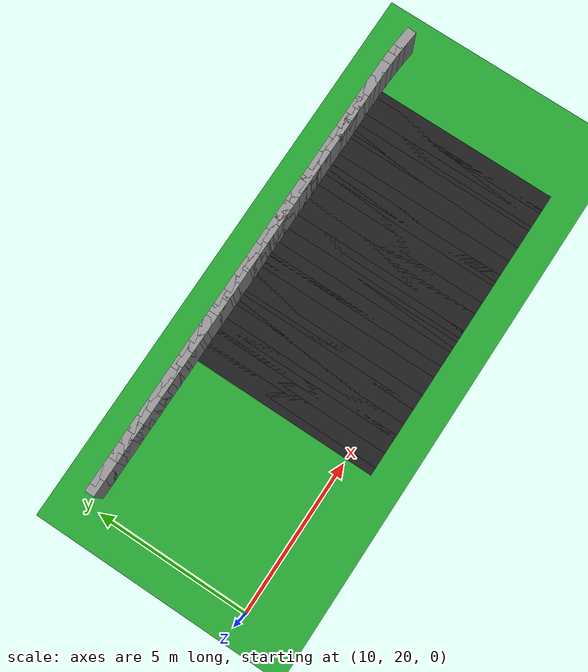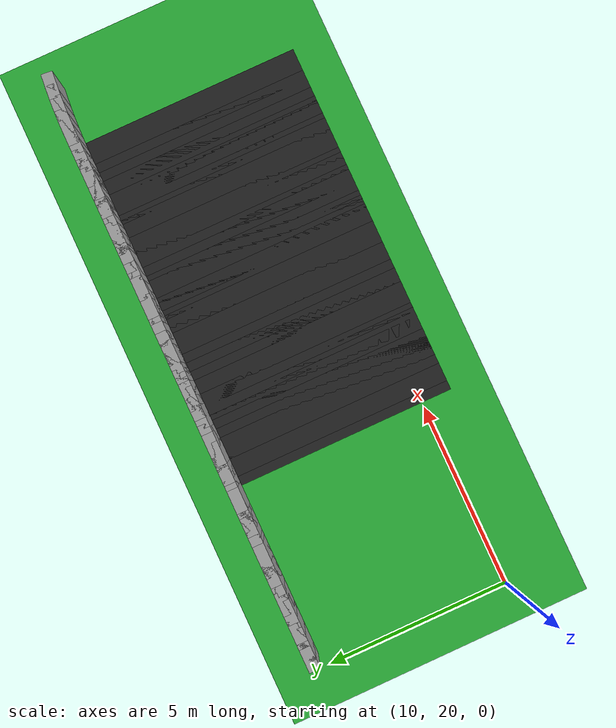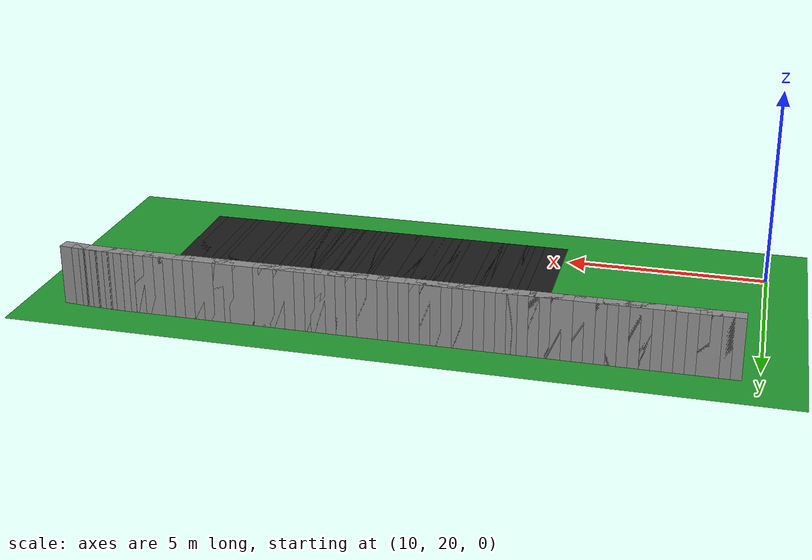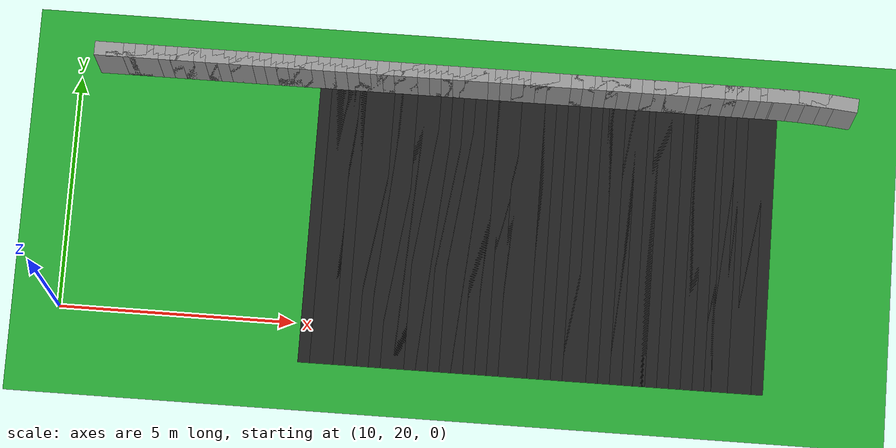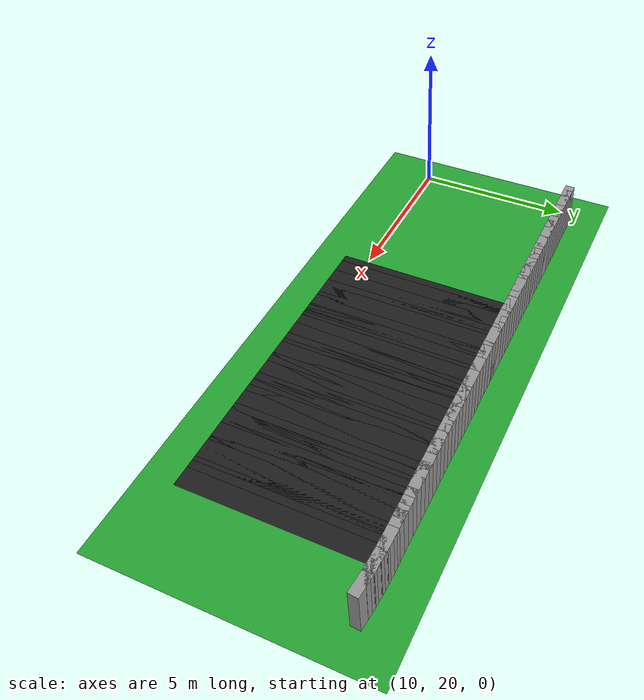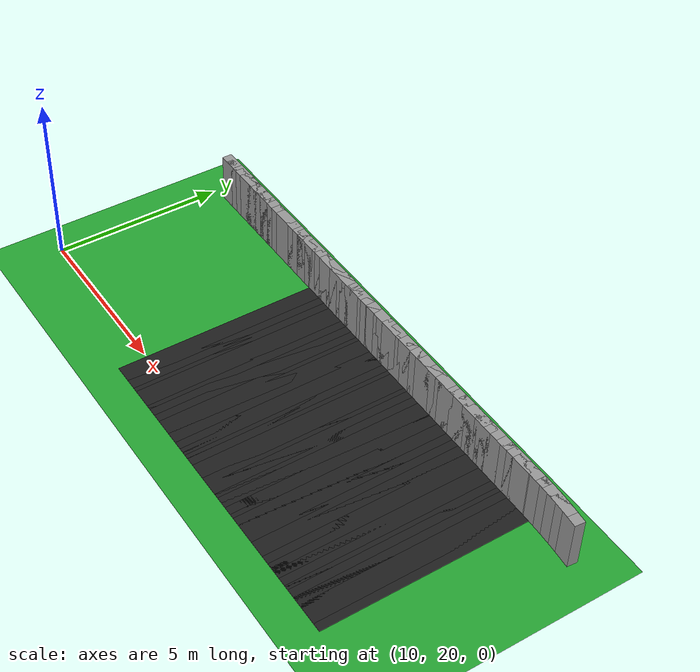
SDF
<sdf version="1.6">
 <world name="obstacle_asymturn">
  <include><uri>model://sun</uri></include>
  <model name="ground_plane">
   <static>true</static>
   <link name="link">
    <collision name="collision">
     <surface><friction><ode><mu>100</mu><mu2>50</mu2></ode></friction></surface>
     <geometry><plane><normal>0 0 1</normal><size>120 120</size></plane></geometry>
    </collision>
    <visual name="visual">
     <geometry><plane><normal>0 0 1</normal><size>120 120</size></plane></geometry>
     <material>
      <script><uri>file://media/materials/scripts/gazebo.material</uri><name>Gazebo/Green</name></script>
     </material>
    </visual>
   </link>
  </model>
  <model name="curbR_240">
   <static>true</static>
   <pose>26.235 25.247 0.750 0 0 3.04858</pose>
   <link name="link">
    <collision name="collision"><geometry><box><size>0.673 0.300 1.500</size></box></geometry></collision>
    <visual name="visual">
     <geometry><box><size>0.673 0.300 1.500</size></box></geometry>
     <material>
      <script><uri>file://media/materials/scripts/gazebo.material</uri><name>Gazebo/Grey</name></script>
     </material>
    </visual>
   </link>
  </model>
  <model name="curbR_241">
   <static>true</static>
   <pose>25.923 25.273 0.750 0 0 3.06925</pose>
   <link name="link">
    <collision name="collision"><geometry><box><size>0.673 0.300 1.500</size></box></geometry></collision>
    <visual name="visual">
     <geometry><box><size>0.673 0.300 1.500</size></box></geometry>
     <material>
      <script><uri>file://media/materials/scripts/gazebo.material</uri><name>Gazebo/Grey</name></script>
     </material>
    </visual>
   </link>
  </model>
  <model name="curbR_242">
   <static>true</static>
   <pose>25.611 25.292 0.750 0 0 3.08992</pose>
   <link name="link">
    <collision name="collision"><geometry><box><size>0.673 0.300 1.500</size></box></geometry></collision>
    <visual name="visual">
     <geometry><box><size>0.673 0.300 1.500</size></box></geometry>
     <material>
      <script><uri>file://media/materials/scripts/gazebo.material</uri><name>Gazebo/Grey</name></script>
     </material>
    </visual>
   </link>
  </model>
  <model name="curbR_243">
   <static>true</static>
   <pose>25.298 25.305 0.750 0 0 3.11059</pose>
   <link name="link">
    <collision name="collision"><geometry><box><size>0.673 0.300 1.500</size></box></geometry></collision>
    <visual name="visual">
     <geometry><box><size>0.673 0.300 1.500</size></box></geometry>
     <material>
      <script><uri>file://media/materials/scripts/gazebo.material</uri><name>Gazebo/Grey</name></script>
     </material>
    </visual>
   </link>
  </model>
  <model name="curbR_244">
   <static>true</static>
   <pose>24.985 25.311 0.750 0 0 3.13126</pose>
   <link name="link">
    <collision name="collision"><geometry><box><size>0.673 0.300 1.500</size></box></geometry></collision>
    <visual name="visual">
     <geometry><box><size>0.673 0.300 1.500</size></box></geometry>
     <material>
      <script><uri>file://media/materials/scripts/gazebo.material</uri><name>Gazebo/Grey</name></script>
     </material>
    </visual>
   </link>
  </model>
  <model name="asphalt_245">
   <static>true</static>
   <pose>24.703 22.163 0.005 0 0 3.14159</pose>
   <link name="link">
    <visual name="visual">
     <geometry><box><size>0.610 6.000 0.010</size></box></geometry>
     <material>
      <script><uri>file://media/materials/scripts/gazebo.material</uri><name>Gazebo/Black</name></script>
     </material>
    </visual>
   </link>
  </model>
  <model name="curbR_245">
   <static>true</static>
   <pose>24.703 25.313 0.750 0 0 3.14159</pose>
   <link name="link">
    <collision name="collision"><geometry><box><size>0.610 0.300 1.500</size></box></geometry></collision>
    <visual name="visual">
     <geometry><box><size>0.610 0.300 1.500</size></box></geometry>
     <material>
      <script><uri>file://media/materials/scripts/gazebo.material</uri><name>Gazebo/Grey</name></script>
     </material>
    </visual>
   </link>
  </model>
  <model name="asphalt_246">
   <static>true</static>
   <pose>24.453 22.163 0.005 0 0 3.14159</pose>
   <link name="link">
    <visual name="visual">
     <geometry><box><size>0.610 6.000 0.010</size></box></geometry>
     <material>
      <script><uri>file://media/materials/scripts/gazebo.material</uri><name>Gazebo/Black</name></script>
     </material>
    </visual>
   </link>
  </model>
  <model name="curbR_246">
   <static>true</static>
   <pose>24.453 25.313 0.750 0 0 3.14159</pose>
   <link name="link">
    <collision name="collision"><geometry><box><size>0.610 0.300 1.500</size></box></geometry></collision>
    <visual name="visual">
     <geometry><box><size>0.610 0.300 1.500</size></box></geometry>
     <material>
      <script><uri>file://media/materials/scripts/gazebo.material</uri><name>Gazebo/Grey</name></script>
     </material>
    </visual>
   </link>
  </model>
  <model name="asphalt_247">
   <static>true</static>
   <pose>24.203 22.163 0.005 0 0 3.14159</pose>
   <link name="link">
    <visual name="visual">
     <geometry><box><size>0.610 6.000 0.010</size></box></geometry>
     <material>
      <script><uri>file://media/materials/scripts/gazebo.material</uri><name>Gazebo/Black</name></script>
     </material>
    </visual>
   </link>
  </model>
  <model name="curbR_247">
   <static>true</static>
   <pose>24.203 25.313 0.750 0 0 3.14159</pose>
   <link name="link">
    <collision name="collision"><geometry><box><size>0.610 0.300 1.500</size></box></geometry></collision>
    <visual name="visual">
     <geometry><box><size>0.610 0.300 1.500</size></box></geometry>
     <material>
      <script><uri>file://media/materials/scripts/gazebo.material</uri><name>Gazebo/Grey</name></script>
     </material>
    </visual>
   </link>
  </model>
  <model name="asphalt_248">
   <static>true</static>
   <pose>23.953 22.163 0.005 0 0 3.14159</pose>
   <link name="link">
    <visual name="visual">
     <geometry><box><size>0.610 6.000 0.010</size></box></geometry>
     <material>
      <script><uri>file://media/materials/scripts/gazebo.material</uri><name>Gazebo/Black</name></script>
     </material>
    </visual>
   </link>
  </model>
  <model name="curbR_248">
   <static>true</static>
   <pose>23.953 25.313 0.750 0 0 3.14159</pose>
   <link name="link">
    <collision name="collision"><geometry><box><size>0.610 0.300 1.500</size></box></geometry></collision>
    <visual name="visual">
     <geometry><box><size>0.610 0.300 1.500</size></box></geometry>
     <material>
      <script><uri>file://media/materials/scripts/gazebo.material</uri><name>Gazebo/Grey</name></script>
     </material>
    </visual>
   </link>
  </model>
  <model name="asphalt_249">
   <static>true</static>
   <pose>23.703 22.163 0.005 0 0 3.14159</pose>
   <link name="link">
    <visual name="visual">
     <geometry><box><size>0.610 6.000 0.010</size></box></geometry>
     <material>
      <script><uri>file://media/materials/scripts/gazebo.material</uri><name>Gazebo/Black</name></script>
     </material>
    </visual>
   </link>
  </model>
  <model name="curbR_249">
   <static>true</static>
   <pose>23.703 25.313 0.750 0 0 3.14159</pose>
   <link name="link">
    <collision name="collision"><geometry><box><size>0.610 0.300 1.500</size></box></geometry></collision>
    <visual name="visual">
     <geometry><box><size>0.610 0.300 1.500</size></box></geometry>
     <material>
      <script><uri>file://media/materials/scripts/gazebo.material</uri><name>Gazebo/Grey</name></script>
     </material>
    </visual>
   </link>
  </model>
  <model name="asphalt_250">
   <static>true</static>
   <pose>23.453 22.163 0.005 0 0 3.14159</pose>
   <link name="link">
    <visual name="visual">
     <geometry><box><size>0.610 6.000 0.010</size></box></geometry>
     <material>
      <script><uri>file://media/materials/scripts/gazebo.material</uri><name>Gazebo/Black</name></script>
     </material>
    </visual>
   </link>
  </model>
  <model name="curbR_250">
   <static>true</static>
   <pose>23.453 25.313 0.750 0 0 3.14159</pose>
   <link name="link">
    <collision name="collision"><geometry><box><size>0.610 0.300 1.500</size></box></geometry></collision>
    <visual name="visual">
     <geometry><box><size>0.610 0.300 1.500</size></box></geometry>
     <material>
      <script><uri>file://media/materials/scripts/gazebo.material</uri><name>Gazebo/Grey</name></script>
     </material>
    </visual>
   </link>
  </model>
  <model name="asphalt_251">
   <static>true</static>
   <pose>23.203 22.163 0.005 0 0 3.14159</pose>
   <link name="link">
    <visual name="visual">
     <geometry><box><size>0.610 6.000 0.010</size></box></geometry>
     <material>
      <script><uri>file://media/materials/scripts/gazebo.material</uri><name>Gazebo/Black</name></script>
     </material>
    </visual>
   </link>
  </model>
  <model name="curbR_251">
   <static>true</static>
   <pose>23.203 25.313 0.750 0 0 3.14159</pose>
   <link name="link">
    <collision name="collision"><geometry><box><size>0.610 0.300 1.500</size></box></geometry></collision>
    <visual name="visual">
     <geometry><box><size>0.610 0.300 1.500</size></box></geometry>
     <material>
      <script><uri>file://media/materials/scripts/gazebo.material</uri><name>Gazebo/Grey</name></script>
     </material>
    </visual>
   </link>
  </model>
  <model name="asphalt_252">
   <static>true</static>
   <pose>22.953 22.163 0.005 0 0 3.14159</pose>
   <link name="link">
    <visual name="visual">
     <geometry><box><size>0.610 6.000 0.010</size></box></geometry>
     <material>
      <script><uri>file://media/materials/scripts/gazebo.material</uri><name>Gazebo/Black</name></script>
     </material>
    </visual>
   </link>
  </model>
  <model name="curbR_252">
   <static>true</static>
   <pose>22.953 25.313 0.750 0 0 3.14159</pose>
   <link name="link">
    <collision name="collision"><geometry><box><size>0.610 0.300 1.500</size></box></geometry></collision>
    <visual name="visual">
     <geometry><box><size>0.610 0.300 1.500</size></box></geometry>
     <material>
      <script><uri>file://media/materials/scripts/gazebo.material</uri><name>Gazebo/Grey</name></script>
     </material>
    </visual>
   </link>
  </model>
  <model name="asphalt_253">
   <static>true</static>
   <pose>22.703 22.163 0.005 0 0 3.14159</pose>
   <link name="link">
    <visual name="visual">
     <geometry><box><size>0.610 6.000 0.010</size></box></geometry>
     <material>
      <script><uri>file://media/materials/scripts/gazebo.material</uri><name>Gazebo/Black</name></script>
     </material>
    </visual>
   </link>
  </model>
  <model name="curbR_253">
   <static>true</static>
   <pose>22.703 25.313 0.750 0 0 3.14159</pose>
   <link name="link">
    <collision name="collision"><geometry><box><size>0.610 0.300 1.500</size></box></geometry></collision>
    <visual name="visual">
     <geometry><box><size>0.610 0.300 1.500</size></box></geometry>
     <material>
      <script><uri>file://media/materials/scripts/gazebo.material</uri><name>Gazebo/Grey</name></script>
     </material>
    </visual>
   </link>
  </model>
  <model name="asphalt_254">
   <static>true</static>
   <pose>22.453 22.163 0.005 0 0 3.14159</pose>
   <link name="link">
    <visual name="visual">
     <geometry><box><size>0.610 6.000 0.010</size></box></geometry>
     <material>
      <script><uri>file://media/materials/scripts/gazebo.material</uri><name>Gazebo/Black</name></script>
     </material>
    </visual>
   </link>
  </model>
  <model name="curbR_254">
   <static>true</static>
   <pose>22.453 25.313 0.750 0 0 3.14159</pose>
   <link name="link">
    <collision name="collision"><geometry><box><size>0.610 0.300 1.500</size></box></geometry></collision>
    <visual name="visual">
     <geometry><box><size>0.610 0.300 1.500</size></box></geometry>
     <material>
      <script><uri>file://media/materials/scripts/gazebo.material</uri><name>Gazebo/Grey</name></script>
     </material>
    </visual>
   </link>
  </model>
  <model name="asphalt_255">
   <static>true</static>
   <pose>22.203 22.163 0.005 0 0 3.14159</pose>
   <link name="link">
    <visual name="visual">
     <geometry><box><size>0.610 6.000 0.010</size></box></geometry>
     <material>
      <script><uri>file://media/materials/scripts/gazebo.material</uri><name>Gazebo/Black</name></script>
     </material>
    </visual>
   </link>
  </model>
  <model name="curbR_255">
   <static>true</static>
   <pose>22.203 25.313 0.750 0 0 3.14159</pose>
   <link name="link">
    <collision name="collision"><geometry><box><size>0.610 0.300 1.500</size></box></geometry></collision>
    <visual name="visual">
     <geometry><box><size>0.610 0.300 1.500</size></box></geometry>
     <material>
      <script><uri>file://media/materials/scripts/gazebo.material</uri><name>Gazebo/Grey</name></script>
     </material>
    </visual>
   </link>
  </model>
  <model name="asphalt_256">
   <static>true</static>
   <pose>21.953 22.163 0.005 0 0 3.14159</pose>
   <link name="link">
    <visual name="visual">
     <geometry><box><size>0.610 6.000 0.010</size></box></geometry>
     <material>
      <script><uri>file://media/materials/scripts/gazebo.material</uri><name>Gazebo/Black</name></script>
     </material>
    </visual>
   </link>
  </model>
  <model name="curbR_256">
   <static>true</static>
   <pose>21.953 25.313 0.750 0 0 3.14159</pose>
   <link name="link">
    <collision name="collision"><geometry><box><size>0.610 0.300 1.500</size></box></geometry></collision>
    <visual name="visual">
     <geometry><box><size>0.610 0.300 1.500</size></box></geometry>
     <material>
      <script><uri>file://media/materials/scripts/gazebo.material</uri><name>Gazebo/Grey</name></script>
     </material>
    </visual>
   </link>
  </model>
  <model name="asphalt_257">
   <static>true</static>
   <pose>21.703 22.163 0.005 0 0 3.14159</pose>
   <link name="link">
    <visual name="visual">
     <geometry><box><size>0.610 6.000 0.010</size></box></geometry>
     <material>
      <script><uri>file://media/materials/scripts/gazebo.material</uri><name>Gazebo/Black</name></script>
     </material>
    </visual>
   </link>
  </model>
  <model name="curbR_257">
   <static>true</static>
   <pose>21.703 25.313 0.750 0 0 3.14159</pose>
   <link name="link">
    <collision name="collision"><geometry><box><size>0.610 0.300 1.500</size></box></geometry></collision>
    <visual name="visual">
     <geometry><box><size>0.610 0.300 1.500</size></box></geometry>
     <material>
      <script><uri>file://media/materials/scripts/gazebo.material</uri><name>Gazebo/Grey</name></script>
     </material>
    </visual>
   </link>
  </model>
  <model name="asphalt_258">
   <static>true</static>
   <pose>21.453 22.163 0.005 0 0 3.14159</pose>
   <link name="link">
    <visual name="visual">
     <geometry><box><size>0.610 6.000 0.010</size></box></geometry>
     <material>
      <script><uri>file://media/materials/scripts/gazebo.material</uri><name>Gazebo/Black</name></script>
     </material>
    </visual>
   </link>
  </model>
  <model name="curbR_258">
   <static>true</static>
   <pose>21.453 25.313 0.750 0 0 3.14159</pose>
   <link name="link">
    <collision name="collision"><geometry><box><size>0.610 0.300 1.500</size></box></geometry></collision>
    <visual name="visual">
     <geometry><box><size>0.610 0.300 1.500</size></box></geometry>
     <material>
      <script><uri>file://media/materials/scripts/gazebo.material</uri><name>Gazebo/Grey</name></script>
     </material>
    </visual>
   </link>
  </model>
  <model name="asphalt_259">
   <static>true</static>
   <pose>21.203 22.163 0.005 0 0 3.14159</pose>
   <link name="link">
    <visual name="visual">
     <geometry><box><size>0.610 6.000 0.010</size></box></geometry>
     <material>
      <script><uri>file://media/materials/scripts/gazebo.material</uri><name>Gazebo/Black</name></script>
     </material>
    </visual>
   </link>
  </model>
  <model name="curbR_259">
   <static>true</static>
   <pose>21.203 25.313 0.750 0 0 3.14159</pose>
   <link name="link">
    <collision name="collision"><geometry><box><size>0.610 0.300 1.500</size></box></geometry></collision>
    <visual name="visual">
     <geometry><box><size>0.610 0.300 1.500</size></box></geometry>
     <material>
      <script><uri>file://media/materials/scripts/gazebo.material</uri><name>Gazebo/Grey</name></script>
     </material>
    </visual>
   </link>
  </model>
  <model name="asphalt_260">
   <static>true</static>
   <pose>20.953 22.163 0.005 0 0 3.14159</pose>
   <link name="link">
    <visual name="visual">
     <geometry><box><size>0.610 6.000 0.010</size></box></geometry>
     <material>
      <script><uri>file://media/materials/scripts/gazebo.material</uri><name>Gazebo/Black</name></script>
     </material>
    </visual>
   </link>
  </model>
  <model name="curbR_260">
   <static>true</static>
   <pose>20.953 25.313 0.750 0 0 3.14159</pose>
   <link name="link">
    <collision name="collision"><geometry><box><size>0.610 0.300 1.500</size></box></geometry></collision>
    <visual name="visual">
     <geometry><box><size>0.610 0.300 1.500</size></box></geometry>
     <material>
      <script><uri>file://media/materials/scripts/gazebo.material</uri><name>Gazebo/Grey</name></script>
     </material>
    </visual>
   </link>
  </model>
  <model name="asphalt_261">
   <static>true</static>
   <pose>20.703 22.163 0.005 0 0 3.14159</pose>
   <link name="link">
    <visual name="visual">
     <geometry><box><size>0.610 6.000 0.010</size></box></geometry>
     <material>
      <script><uri>file://media/materials/scripts/gazebo.material</uri><name>Gazebo/Black</name></script>
     </material>
    </visual>
   </link>
  </model>
  <model name="curbR_261">
   <static>true</static>
   <pose>20.703 25.313 0.750 0 0 3.14159</pose>
   <link name="link">
    <collision name="collision"><geometry><box><size>0.610 0.300 1.500</size></box></geometry></collision>
    <visual name="visual">
     <geometry><box><size>0.610 0.300 1.500</size></box></geometry>
     <material>
      <script><uri>file://media/materials/scripts/gazebo.material</uri><name>Gazebo/Grey</name></script>
     </material>
    </visual>
   </link>
  </model>
  <model name="asphalt_262">
   <static>true</static>
   <pose>20.453 22.163 0.005 0 0 3.14159</pose>
   <link name="link">
    <visual name="visual">
     <geometry><box><size>0.610 6.000 0.010</size></box></geometry>
     <material>
      <script><uri>file://media/materials/scripts/gazebo.material</uri><name>Gazebo/Black</name></script>
     </material>
    </visual>
   </link>
  </model>
  <model name="curbR_262">
   <static>true</static>
   <pose>20.453 25.313 0.750 0 0 3.14159</pose>
   <link name="link">
    <collision name="collision"><geometry><box><size>0.610 0.300 1.500</size></box></geometry></collision>
    <visual name="visual">
     <geometry><box><size>0.610 0.300 1.500</size></box></geometry>
     <material>
      <script><uri>file://media/materials/scripts/gazebo.material</uri><name>Gazebo/Grey</name></script>
     </material>
    </visual>
   </link>
  </model>
  <model name="asphalt_263">
   <static>true</static>
   <pose>20.203 22.163 0.005 0 0 3.14159</pose>
   <link name="link">
    <visual name="visual">
     <geometry><box><size>0.610 6.000 0.010</size></box></geometry>
     <material>
      <script><uri>file://media/materials/scripts/gazebo.material</uri><name>Gazebo/Black</name></script>
     </material>
    </visual>
   </link>
  </model>
  <model name="curbR_263">
   <static>true</static>
   <pose>20.203 25.313 0.750 0 0 3.14159</pose>
   <link name="link">
    <collision name="collision"><geometry><box><size>0.610 0.300 1.500</size></box></geometry></collision>
    <visual name="visual">
     <geometry><box><size>0.610 0.300 1.500</size></box></geometry>
     <material>
      <script><uri>file://media/materials/scripts/gazebo.material</uri><name>Gazebo/Grey</name></script>
     </material>
    </visual>
   </link>
  </model>
  <model name="asphalt_264">
   <static>true</static>
   <pose>19.953 22.163 0.005 0 0 3.14159</pose>
   <link name="link">
    <visual name="visual">
     <geometry><box><size>0.610 6.000 0.010</size></box></geometry>
     <material>
      <script><uri>file://media/materials/scripts/gazebo.material</uri><name>Gazebo/Black</name></script>
     </material>
    </visual>
   </link>
  </model>
  <model name="curbR_264">
   <static>true</static>
   <pose>19.953 25.313 0.750 0 0 3.14159</pose>
   <link name="link">
    <collision name="collision"><geometry><box><size>0.610 0.300 1.500</size></box></geometry></collision>
    <visual name="visual">
     <geometry><box><size>0.610 0.300 1.500</size></box></geometry>
     <material>
      <script><uri>file://media/materials/scripts/gazebo.material</uri><name>Gazebo/Grey</name></script>
     </material>
    </visual>
   </link>
  </model>
  <model name="asphalt_265">
   <static>true</static>
   <pose>19.703 22.163 0.005 0 0 3.14159</pose>
   <link name="link">
    <visual name="visual">
     <geometry><box><size>0.610 6.000 0.010</size></box></geometry>
     <material>
      <script><uri>file://media/materials/scripts/gazebo.material</uri><name>Gazebo/Black</name></script>
     </material>
    </visual>
   </link>
  </model>
  <model name="curbR_265">
   <static>true</static>
   <pose>19.703 25.313 0.750 0 0 3.14159</pose>
   <link name="link">
    <collision name="collision"><geometry><box><size>0.610 0.300 1.500</size></box></geometry></collision>
    <visual name="visual">
     <geometry><box><size>0.610 0.300 1.500</size></box></geometry>
     <material>
      <script><uri>file://media/materials/scripts/gazebo.material</uri><name>Gazebo/Grey</name></script>
     </material>
    </visual>
   </link>
  </model>
  <model name="asphalt_266">
   <static>true</static>
   <pose>19.453 22.163 0.005 0 0 3.14159</pose>
   <link name="link">
    <visual name="visual">
     <geometry><box><size>0.610 6.000 0.010</size></box></geometry>
     <material>
      <script><uri>file://media/materials/scripts/gazebo.material</uri><name>Gazebo/Black</name></script>
     </material>
    </visual>
   </link>
  </model>
  <model name="curbR_266">
   <static>true</static>
   <pose>19.453 25.313 0.750 0 0 3.14159</pose>
   <link name="link">
    <collision name="collision"><geometry><box><size>0.610 0.300 1.500</size></box></geometry></collision>
    <visual name="visual">
     <geometry><box><size>0.610 0.300 1.500</size></box></geometry>
     <material>
      <script><uri>file://media/materials/scripts/gazebo.material</uri><name>Gazebo/Grey</name></script>
     </material>
    </visual>
   </link>
  </model>
  <model name="asphalt_267">
   <static>true</static>
   <pose>19.203 22.163 0.005 0 0 3.14159</pose>
   <link name="link">
    <visual name="visual">
     <geometry><box><size>0.610 6.000 0.010</size></box></geometry>
     <material>
      <script><uri>file://media/materials/scripts/gazebo.material</uri><name>Gazebo/Black</name></script>
     </material>
    </visual>
   </link>
  </model>
  <model name="curbR_267">
   <static>true</static>
   <pose>19.203 25.313 0.750 0 0 3.14159</pose>
   <link name="link">
    <collision name="collision"><geometry><box><size>0.610 0.300 1.500</size></box></geometry></collision>
    <visual name="visual">
     <geometry><box><size>0.610 0.300 1.500</size></box></geometry>
     <material>
      <script><uri>file://media/materials/scripts/gazebo.material</uri><name>Gazebo/Grey</name></script>
     </material>
    </visual>
   </link>
  </model>
  <model name="asphalt_268">
   <static>true</static>
   <pose>18.953 22.163 0.005 0 0 3.14159</pose>
   <link name="link">
    <visual name="visual">
     <geometry><box><size>0.610 6.000 0.010</size></box></geometry>
     <material>
      <script><uri>file://media/materials/scripts/gazebo.material</uri><name>Gazebo/Black</name></script>
     </material>
    </visual>
   </link>
  </model>
  <model name="curbR_268">
   <static>true</static>
   <pose>18.953 25.313 0.750 0 0 3.14159</pose>
   <link name="link">
    <collision name="collision"><geometry><box><size>0.610 0.300 1.500</size></box></geometry></collision>
    <visual name="visual">
     <geometry><box><size>0.610 0.300 1.500</size></box></geometry>
     <material>
      <script><uri>file://media/materials/scripts/gazebo.material</uri><name>Gazebo/Grey</name></script>
     </material>
    </visual>
   </link>
  </model>
  <model name="asphalt_269">
   <static>true</static>
   <pose>18.703 22.163 0.005 0 0 3.14159</pose>
   <link name="link">
    <visual name="visual">
     <geometry><box><size>0.610 6.000 0.010</size></box></geometry>
     <material>
      <script><uri>file://media/materials/scripts/gazebo.material</uri><name>Gazebo/Black</name></script>
     </material>
    </visual>
   </link>
  </model>
  <model name="curbR_269">
   <static>true</static>
   <pose>18.703 25.313 0.750 0 0 3.14159</pose>
   <link name="link">
    <collision name="collision"><geometry><box><size>0.610 0.300 1.500</size></box></geometry></collision>
    <visual name="visual">
     <geometry><box><size>0.610 0.300 1.500</size></box></geometry>
     <material>
      <script><uri>file://media/materials/scripts/gazebo.material</uri><name>Gazebo/Grey</name></script>
     </material>
    </visual>
   </link>
  </model>
  <model name="asphalt_270">
   <static>true</static>
   <pose>18.453 22.163 0.005 0 0 3.14159</pose>
   <link name="link">
    <visual name="visual">
     <geometry><box><size>0.610 6.000 0.010</size></box></geometry>
     <material>
      <script><uri>file://media/materials/scripts/gazebo.material</uri><name>Gazebo/Black</name></script>
     </material>
    </visual>
   </link>
  </model>
  <model name="curbR_270">
   <static>true</static>
   <pose>18.453 25.313 0.750 0 0 3.14159</pose>
   <link name="link">
    <collision name="collision"><geometry><box><size>0.610 0.300 1.500</size></box></geometry></collision>
    <visual name="visual">
     <geometry><box><size>0.610 0.300 1.500</size></box></geometry>
     <material>
      <script><uri>file://media/materials/scripts/gazebo.material</uri><name>Gazebo/Grey</name></script>
     </material>
    </visual>
   </link>
  </model>
  <model name="asphalt_271">
   <static>true</static>
   <pose>18.203 22.163 0.005 0 0 3.14159</pose>
   <link name="link">
    <visual name="visual">
     <geometry><box><size>0.610 6.000 0.010</size></box></geometry>
     <material>
      <script><uri>file://media/materials/scripts/gazebo.material</uri><name>Gazebo/Black</name></script>
     </material>
    </visual>
   </link>
  </model>
  <model name="curbR_271">
   <static>true</static>
   <pose>18.203 25.313 0.750 0 0 3.14159</pose>
   <link name="link">
    <collision name="collision"><geometry><box><size>0.610 0.300 1.500</size></box></geometry></collision>
    <visual name="visual">
     <geometry><box><size>0.610 0.300 1.500</size></box></geometry>
     <material>
      <script><uri>file://media/materials/scripts/gazebo.material</uri><name>Gazebo/Grey</name></script>
     </material>
    </visual>
   </link>
  </model>
  <model name="asphalt_272">
   <static>true</static>
   <pose>17.953 22.163 0.005 0 0 3.14159</pose>
   <link name="link">
    <visual name="visual">
     <geometry><box><size>0.610 6.000 0.010</size></box></geometry>
     <material>
      <script><uri>file://media/materials/scripts/gazebo.material</uri><name>Gazebo/Black</name></script>
     </material>
    </visual>
   </link>
  </model>
  <model name="curbR_272">
   <static>true</static>
   <pose>17.953 25.313 0.750 0 0 3.14159</pose>
   <link name="link">
    <collision name="collision"><geometry><box><size>0.610 0.300 1.500</size></box></geometry></collision>
    <visual name="visual">
     <geometry><box><size>0.610 0.300 1.500</size></box></geometry>
     <material>
      <script><uri>file://media/materials/scripts/gazebo.material</uri><name>Gazebo/Grey</name></script>
     </material>
    </visual>
   </link>
  </model>
  <model name="asphalt_273">
   <static>true</static>
   <pose>17.703 22.163 0.005 0 0 3.14159</pose>
   <link name="link">
    <visual name="visual">
     <geometry><box><size>0.610 6.000 0.010</size></box></geometry>
     <material>
      <script><uri>file://media/materials/scripts/gazebo.material</uri><name>Gazebo/Black</name></script>
     </material>
    </visual>
   </link>
  </model>
  <model name="curbR_273">
   <static>true</static>
   <pose>17.703 25.313 0.750 0 0 3.14159</pose>
   <link name="link">
    <collision name="collision"><geometry><box><size>0.610 0.300 1.500</size></box></geometry></collision>
    <visual name="visual">
     <geometry><box><size>0.610 0.300 1.500</size></box></geometry>
     <material>
      <script><uri>file://media/materials/scripts/gazebo.material</uri><name>Gazebo/Grey</name></script>
     </material>
    </visual>
   </link>
  </model>
  <model name="asphalt_274">
   <static>true</static>
   <pose>17.453 22.163 0.005 0 0 3.14159</pose>
   <link name="link">
    <visual name="visual">
     <geometry><box><size>0.610 6.000 0.010</size></box></geometry>
     <material>
      <script><uri>file://media/materials/scripts/gazebo.material</uri><name>Gazebo/Black</name></script>
     </material>
    </visual>
   </link>
  </model>
  <model name="curbR_274">
   <static>true</static>
   <pose>17.453 25.313 0.750 0 0 3.14159</pose>
   <link name="link">
    <collision name="collision"><geometry><box><size>0.610 0.300 1.500</size></box></geometry></collision>
    <visual name="visual">
     <geometry><box><size>0.610 0.300 1.500</size></box></geometry>
     <material>
      <script><uri>file://media/materials/scripts/gazebo.material</uri><name>Gazebo/Grey</name></script>
     </material>
    </visual>
   </link>
  </model>
  <model name="asphalt_275">
   <static>true</static>
   <pose>17.203 22.163 0.005 0 0 3.14159</pose>
   <link name="link">
    <visual name="visual">
     <geometry><box><size>0.610 6.000 0.010</size></box></geometry>
     <material>
      <script><uri>file://media/materials/scripts/gazebo.material</uri><name>Gazebo/Black</name></script>
     </material>
    </visual>
   </link>
  </model>
  <model name="curbR_275">
   <static>true</static>
   <pose>17.203 25.313 0.750 0 0 3.14159</pose>
   <link name="link">
    <collision name="collision"><geometry><box><size>0.610 0.300 1.500</size></box></geometry></collision>
    <visual name="visual">
     <geometry><box><size>0.610 0.300 1.500</size></box></geometry>
     <material>
      <script><uri>file://media/materials/scripts/gazebo.material</uri><name>Gazebo/Grey</name></script>
     </material>
    </visual>
   </link>
  </model>
  <model name="asphalt_276">
   <static>true</static>
   <pose>16.953 22.163 0.005 0 0 3.14159</pose>
   <link name="link">
    <visual name="visual">
     <geometry><box><size>0.610 6.000 0.010</size></box></geometry>
     <material>
      <script><uri>file://media/materials/scripts/gazebo.material</uri><name>Gazebo/Black</name></script>
     </material>
    </visual>
   </link>
  </model>
  <model name="curbR_276">
   <static>true</static>
   <pose>16.953 25.313 0.750 0 0 3.14159</pose>
   <link name="link">
    <collision name="collision"><geometry><box><size>0.610 0.300 1.500</size></box></geometry></collision>
    <visual name="visual">
     <geometry><box><size>0.610 0.300 1.500</size></box></geometry>
     <material>
      <script><uri>file://media/materials/scripts/gazebo.material</uri><name>Gazebo/Grey</name></script>
     </material>
    </visual>
   </link>
  </model>
  <model name="asphalt_277">
   <static>true</static>
   <pose>16.703 22.163 0.005 0 0 3.14159</pose>
   <link name="link">
    <visual name="visual">
     <geometry><box><size>0.610 6.000 0.010</size></box></geometry>
     <material>
      <script><uri>file://media/materials/scripts/gazebo.material</uri><name>Gazebo/Black</name></script>
     </material>
    </visual>
   </link>
  </model>
  <model name="curbR_277">
   <static>true</static>
   <pose>16.703 25.313 0.750 0 0 3.14159</pose>
   <link name="link">
    <collision name="collision"><geometry><box><size>0.610 0.300 1.500</size></box></geometry></collision>
    <visual name="visual">
     <geometry><box><size>0.610 0.300 1.500</size></box></geometry>
     <material>
      <script><uri>file://media/materials/scripts/gazebo.material</uri><name>Gazebo/Grey</name></script>
     </material>
    </visual>
   </link>
  </model>
  <model name="asphalt_278">
   <static>true</static>
   <pose>16.453 22.163 0.005 0 0 3.14159</pose>
   <link name="link">
    <visual name="visual">
     <geometry><box><size>0.610 6.000 0.010</size></box></geometry>
     <material>
      <script><uri>file://media/materials/scripts/gazebo.material</uri><name>Gazebo/Black</name></script>
     </material>
    </visual>
   </link>
  </model>
  <model name="curbR_278">
   <static>true</static>
   <pose>16.453 25.313 0.750 0 0 3.14159</pose>
   <link name="link">
    <collision name="collision"><geometry><box><size>0.610 0.300 1.500</size></box></geometry></collision>
    <visual name="visual">
     <geometry><box><size>0.610 0.300 1.500</size></box></geometry>
     <material>
      <script><uri>file://media/materials/scripts/gazebo.material</uri><name>Gazebo/Grey</name></script>
     </material>
    </visual>
   </link>
  </model>
  <model name="asphalt_279">
   <static>true</static>
   <pose>16.203 22.163 0.005 0 0 3.14159</pose>
   <link name="link">
    <visual name="visual">
     <geometry><box><size>0.610 6.000 0.010</size></box></geometry>
     <material>
      <script><uri>file://media/materials/scripts/gazebo.material</uri><name>Gazebo/Black</name></script>
     </material>
    </visual>
   </link>
  </model>
  <model name="curbR_279">
   <static>true</static>
   <pose>16.203 25.313 0.750 0 0 3.14159</pose>
   <link name="link">
    <collision name="collision"><geometry><box><size>0.610 0.300 1.500</size></box></geometry></collision>
    <visual name="visual">
     <geometry><box><size>0.610 0.300 1.500</size></box></geometry>
     <material>
      <script><uri>file://media/materials/scripts/gazebo.material</uri><name>Gazebo/Grey</name></script>
     </material>
    </visual>
   </link>
  </model>
  <model name="asphalt_280">
   <static>true</static>
   <pose>15.953 22.163 0.005 0 0 3.14159</pose>
   <link name="link">
    <visual name="visual">
     <geometry><box><size>0.610 6.000 0.010</size></box></geometry>
     <material>
      <script><uri>file://media/materials/scripts/gazebo.material</uri><name>Gazebo/Black</name></script>
     </material>
    </visual>
   </link>
  </model>
  <model name="curbR_280">
   <static>true</static>
   <pose>15.953 25.313 0.750 0 0 3.14159</pose>
   <link name="link">
    <collision name="collision"><geometry><box><size>0.610 0.300 1.500</size></box></geometry></collision>
    <visual name="visual">
     <geometry><box><size>0.610 0.300 1.500</size></box></geometry>
     <material>
      <script><uri>file://media/materials/scripts/gazebo.material</uri><name>Gazebo/Grey</name></script>
     </material>
    </visual>
   </link>
  </model>
  <model name="asphalt_281">
   <static>true</static>
   <pose>15.703 22.163 0.005 0 0 3.14159</pose>
   <link name="link">
    <visual name="visual">
     <geometry><box><size>0.610 6.000 0.010</size></box></geometry>
     <material>
      <script><uri>file://media/materials/scripts/gazebo.material</uri><name>Gazebo/Black</name></script>
     </material>
    </visual>
   </link>
  </model>
  <model name="curbR_281">
   <static>true</static>
   <pose>15.703 25.313 0.750 0 0 3.14159</pose>
   <link name="link">
    <collision name="collision"><geometry><box><size>0.610 0.300 1.500</size></box></geometry></collision>
    <visual name="visual">
     <geometry><box><size>0.610 0.300 1.500</size></box></geometry>
     <material>
      <script><uri>file://media/materials/scripts/gazebo.material</uri><name>Gazebo/Grey</name></script>
     </material>
    </visual>
   </link>
  </model>
  <model name="asphalt_282">
   <static>true</static>
   <pose>15.453 22.163 0.005 0 0 3.14159</pose>
   <link name="link">
    <visual name="visual">
     <geometry><box><size>0.610 6.000 0.010</size></box></geometry>
     <material>
      <script><uri>file://media/materials/scripts/gazebo.material</uri><name>Gazebo/Black</name></script>
     </material>
    </visual>
   </link>
  </model>
  <model name="curbR_282">
   <static>true</static>
   <pose>15.453 25.313 0.750 0 0 3.14159</pose>
   <link name="link">
    <collision name="collision"><geometry><box><size>0.610 0.300 1.500</size></box></geometry></collision>
    <visual name="visual">
     <geometry><box><size>0.610 0.300 1.500</size></box></geometry>
     <material>
      <script><uri>file://media/materials/scripts/gazebo.material</uri><name>Gazebo/Grey</name></script>
     </material>
    </visual>
   </link>
  </model>
  <model name="curbR_283">
   <static>true</static>
   <pose>15.203 25.313 0.750 0 0 3.14159</pose>
   <link name="link">
    <collision name="collision"><geometry><box><size>0.610 0.300 1.500</size></box></geometry></collision>
    <visual name="visual">
     <geometry><box><size>0.610 0.300 1.500</size></box></geometry>
     <material>
      <script><uri>file://media/materials/scripts/gazebo.material</uri><name>Gazebo/Grey</name></script>
     </material>
    </visual>
   </link>
  </model>
  <model name="curbR_284">
   <static>true</static>
   <pose>14.953 25.313 0.750 0 0 3.14159</pose>
   <link name="link">
    <collision name="collision"><geometry><box><size>0.610 0.300 1.500</size></box></geometry></collision>
    <visual name="visual">
     <geometry><box><size>0.610 0.300 1.500</size></box></geometry>
     <material>
      <script><uri>file://media/materials/scripts/gazebo.material</uri><name>Gazebo/Grey</name></script>
     </material>
    </visual>
   </link>
  </model>
  <model name="curbR_285">
   <static>true</static>
   <pose>14.703 25.313 0.750 0 0 3.14159</pose>
   <link name="link">
    <collision name="collision"><geometry><box><size>0.610 0.300 1.500</size></box></geometry></collision>
    <visual name="visual">
     <geometry><box><size>0.610 0.300 1.500</size></box></geometry>
     <material>
      <script><uri>file://media/materials/scripts/gazebo.material</uri><name>Gazebo/Grey</name></script>
     </material>
    </visual>
   </link>
  </model>
  <model name="curbR_286">
   <static>true</static>
   <pose>14.453 25.313 0.750 0 0 3.14159</pose>
   <link name="link">
    <collision name="collision"><geometry><box><size>0.610 0.300 1.500</size></box></geometry></collision>
    <visual name="visual">
     <geometry><box><size>0.610 0.300 1.500</size></box></geometry>
     <material>
      <script><uri>file://media/materials/scripts/gazebo.material</uri><name>Gazebo/Grey</name></script>
     </material>
    </visual>
   </link>
  </model>
  <model name="curbR_287">
   <static>true</static>
   <pose>14.203 25.313 0.750 0 0 3.14159</pose>
   <link name="link">
    <collision name="collision"><geometry><box><size>0.610 0.300 1.500</size></box></geometry></collision>
    <visual name="visual">
     <geometry><box><size>0.610 0.300 1.500</size></box></geometry>
     <material>
      <script><uri>file://media/materials/scripts/gazebo.material</uri><name>Gazebo/Grey</name></script>
     </material>
    </visual>
   </link>
  </model>
  <model name="curbR_288">
   <static>true</static>
   <pose>13.953 25.313 0.750 0 0 3.14159</pose>
   <link name="link">
    <collision name="collision"><geometry><box><size>0.610 0.300 1.500</size></box></geometry></collision>
    <visual name="visual">
     <geometry><box><size>0.610 0.300 1.500</size></box></geometry>
     <material>
      <script><uri>file://media/materials/scripts/gazebo.material</uri><name>Gazebo/Grey</name></script>
     </material>
    </visual>
   </link>
  </model>
  <model name="curbR_289">
   <static>true</static>
   <pose>13.703 25.313 0.750 0 0 3.14159</pose>
   <link name="link">
    <collision name="collision"><geometry><box><size>0.610 0.300 1.500</size></box></geometry></collision>
    <visual name="visual">
     <geometry><box><size>0.610 0.300 1.500</size></box></geometry>
     <material>
      <script><uri>file://media/materials/scripts/gazebo.material</uri><name>Gazebo/Grey</name></script>
     </material>
    </visual>
   </link>
  </model>
  <model name="curbR_290">
   <static>true</static>
   <pose>13.453 25.313 0.750 0 0 3.14159</pose>
   <link name="link">
    <collision name="collision"><geometry><box><size>0.610 0.300 1.500</size></box></geometry></collision>
    <visual name="visual">
     <geometry><box><size>0.610 0.300 1.500</size></box></geometry>
     <material>
      <script><uri>file://media/materials/scripts/gazebo.material</uri><name>Gazebo/Grey</name></script>
     </material>
    </visual>
   </link>
  </model>
  <model name="curbR_291">
   <static>true</static>
   <pose>13.203 25.313 0.750 0 0 3.14159</pose>
   <link name="link">
    <collision name="collision"><geometry><box><size>0.610 0.300 1.500</size></box></geometry></collision>
    <visual name="visual">
     <geometry><box><size>0.610 0.300 1.500</size></box></geometry>
     <material>
      <script><uri>file://media/materials/scripts/gazebo.material</uri><name>Gazebo/Grey</name></script>
     </material>
    </visual>
   </link>
  </model>
  <model name="curbR_292">
   <static>true</static>
   <pose>12.953 25.313 0.750 0 0 3.14159</pose>
   <link name="link">
    <collision name="collision"><geometry><box><size>0.610 0.300 1.500</size></box></geometry></collision>
    <visual name="visual">
     <geometry><box><size>0.610 0.300 1.500</size></box></geometry>
     <material>
      <script><uri>file://media/materials/scripts/gazebo.material</uri><name>Gazebo/Grey</name></script>
     </material>
    </visual>
   </link>
  </model>
  <model name="curbR_293">
   <static>true</static>
   <pose>12.703 25.313 0.750 0 0 3.14159</pose>
   <link name="link">
    <collision name="collision"><geometry><box><size>0.610 0.300 1.500</size></box></geometry></collision>
    <visual name="visual">
     <geometry><box><size>0.610 0.300 1.500</size></box></geometry>
     <material>
      <script><uri>file://media/materials/scripts/gazebo.material</uri><name>Gazebo/Grey</name></script>
     </material>
    </visual>
   </link>
  </model>
  <model name="curbR_294">
   <static>true</static>
   <pose>12.453 25.313 0.750 0 0 3.14159</pose>
   <link name="link">
    <collision name="collision"><geometry><box><size>0.610 0.300 1.500</size></box></geometry></collision>
    <visual name="visual">
     <geometry><box><size>0.610 0.300 1.500</size></box></geometry>
     <material>
      <script><uri>file://media/materials/scripts/gazebo.material</uri><name>Gazebo/Grey</name></script>
     </material>
    </visual>
   </link>
  </model>
  <model name="curbR_295">
   <static>true</static>
   <pose>12.203 25.313 0.750 0 0 3.14159</pose>
   <link name="link">
    <collision name="collision"><geometry><box><size>0.610 0.300 1.500</size></box></geometry></collision>
    <visual name="visual">
     <geometry><box><size>0.610 0.300 1.500</size></box></geometry>
     <material>
      <script><uri>file://media/materials/scripts/gazebo.material</uri><name>Gazebo/Grey</name></script>
     </material>
    </visual>
   </link>
  </model>
  <model name="curbR_296">
   <static>true</static>
   <pose>11.953 25.313 0.750 0 0 3.14159</pose>
   <link name="link">
    <collision name="collision"><geometry><box><size>0.610 0.300 1.500</size></box></geometry></collision>
    <visual name="visual">
     <geometry><box><size>0.610 0.300 1.500</size></box></geometry>
     <material>
      <script><uri>file://media/materials/scripts/gazebo.material</uri><name>Gazebo/Grey</name></script>
     </material>
    </visual>
   </link>
  </model>
  <model name="curbR_297">
   <static>true</static>
   <pose>11.703 25.313 0.750 0 0 3.14159</pose>
   <link name="link">
    <collision name="collision"><geometry><box><size>0.610 0.300 1.500</size></box></geometry></collision>
    <visual name="visual">
     <geometry><box><size>0.610 0.300 1.500</size></box></geometry>
     <material>
      <script><uri>file://media/materials/scripts/gazebo.material</uri><name>Gazebo/Grey</name></script>
     </material>
    </visual>
   </link>
  </model>
  <model name="curbR_298">
   <static>true</static>
   <pose>11.453 25.313 0.750 0 0 3.14159</pose>
   <link name="link">
    <collision name="collision"><geometry><box><size>0.610 0.300 1.500</size></box></geometry></collision>
    <visual name="visual">
     <geometry><box><size>0.610 0.300 1.500</size></box></geometry>
     <material>
      <script><uri>file://media/materials/scripts/gazebo.material</uri><name>Gazebo/Grey</name></script>
     </material>
    </visual>
   </link>
  </model>
  <model name="curbR_299">
   <static>true</static>
   <pose>11.203 25.313 0.750 0 0 3.14159</pose>
   <link name="link">
    <collision name="collision"><geometry><box><size>0.610 0.300 1.500</size></box></geometry></collision>
    <visual name="visual">
     <geometry><box><size>0.610 0.300 1.500</size></box></geometry>
     <material>
      <script><uri>file://media/materials/scripts/gazebo.material</uri><name>Gazebo/Grey</name></script>
     </material>
    </visual>
   </link>
  </model>
  <model name="curbR_300">
   <static>true</static>
   <pose>10.953 25.313 0.750 0 0 3.14159</pose>
   <link name="link">
    <collision name="collision"><geometry><box><size>0.610 0.300 1.500</size></box></geometry></collision>
    <visual name="visual">
     <geometry><box><size>0.610 0.300 1.500</size></box></geometry>
     <material>
      <script><uri>file://media/materials/scripts/gazebo.material</uri><name>Gazebo/Grey</name></script>
     </material>
    </visual>
   </link>
  </model>
  <model name="curbR_301">
   <static>true</static>
   <pose>10.703 25.313 0.750 0 0 3.14159</pose>
   <link name="link">
    <collision name="collision"><geometry><box><size>0.610 0.300 1.500</size></box></geometry></collision>
    <visual name="visual">
     <geometry><box><size>0.610 0.300 1.500</size></box></geometry>
     <material>
      <script><uri>file://media/materials/scripts/gazebo.material</uri><name>Gazebo/Grey</name></script>
     </material>
    </visual>
   </link>
  </model>
 </world>
</sdf>
